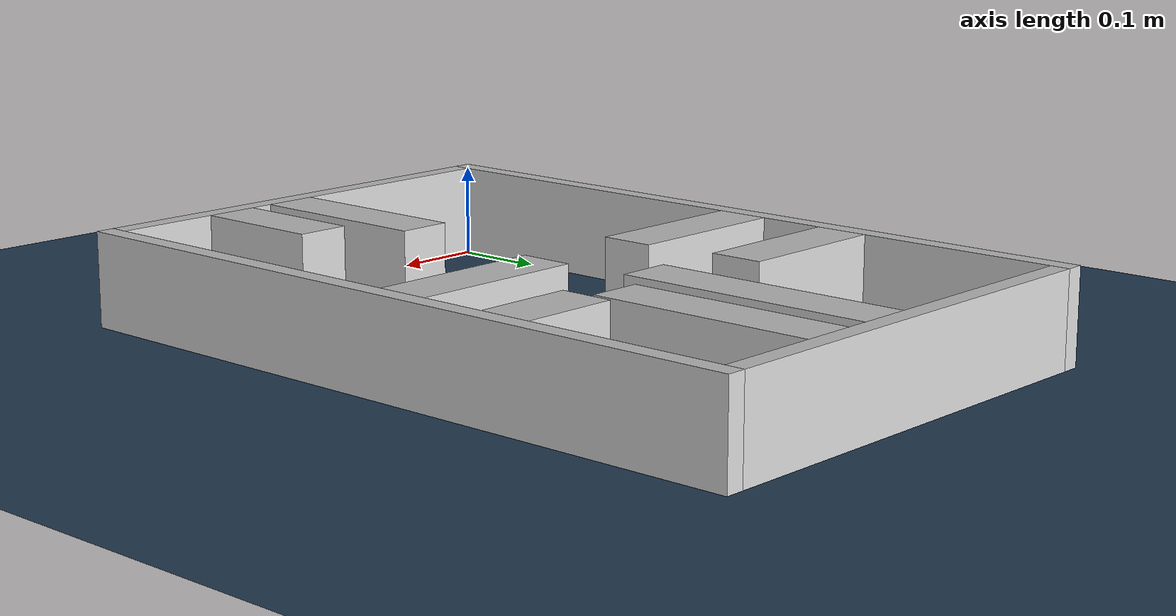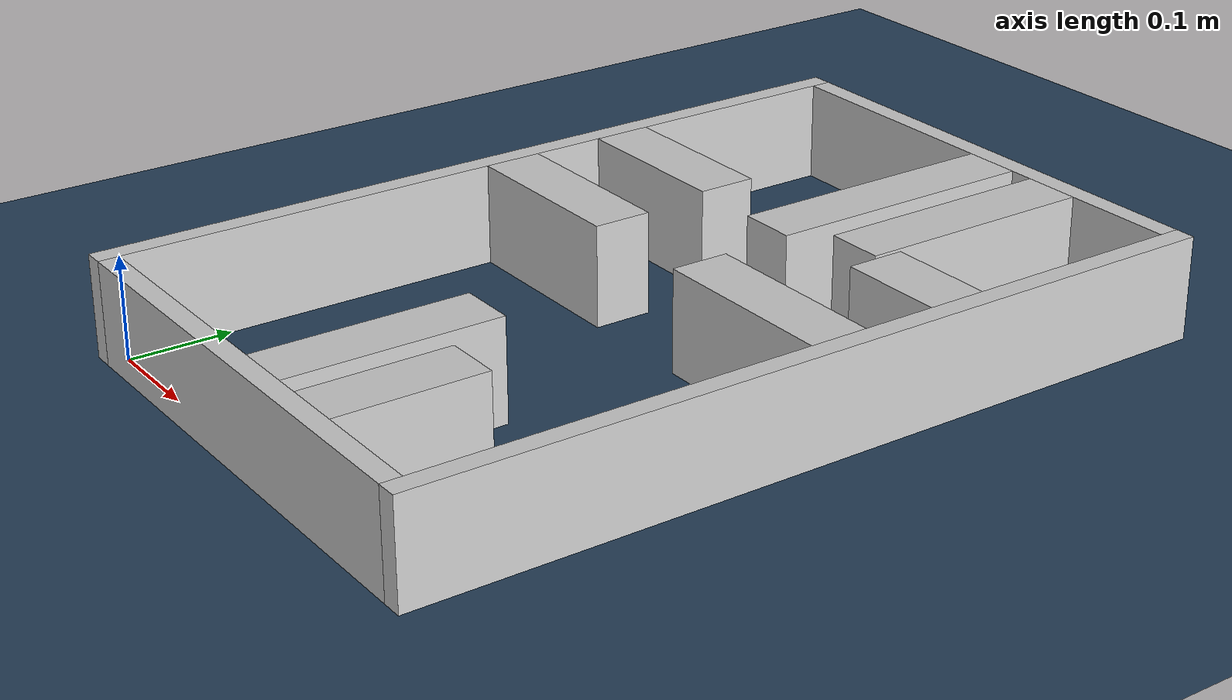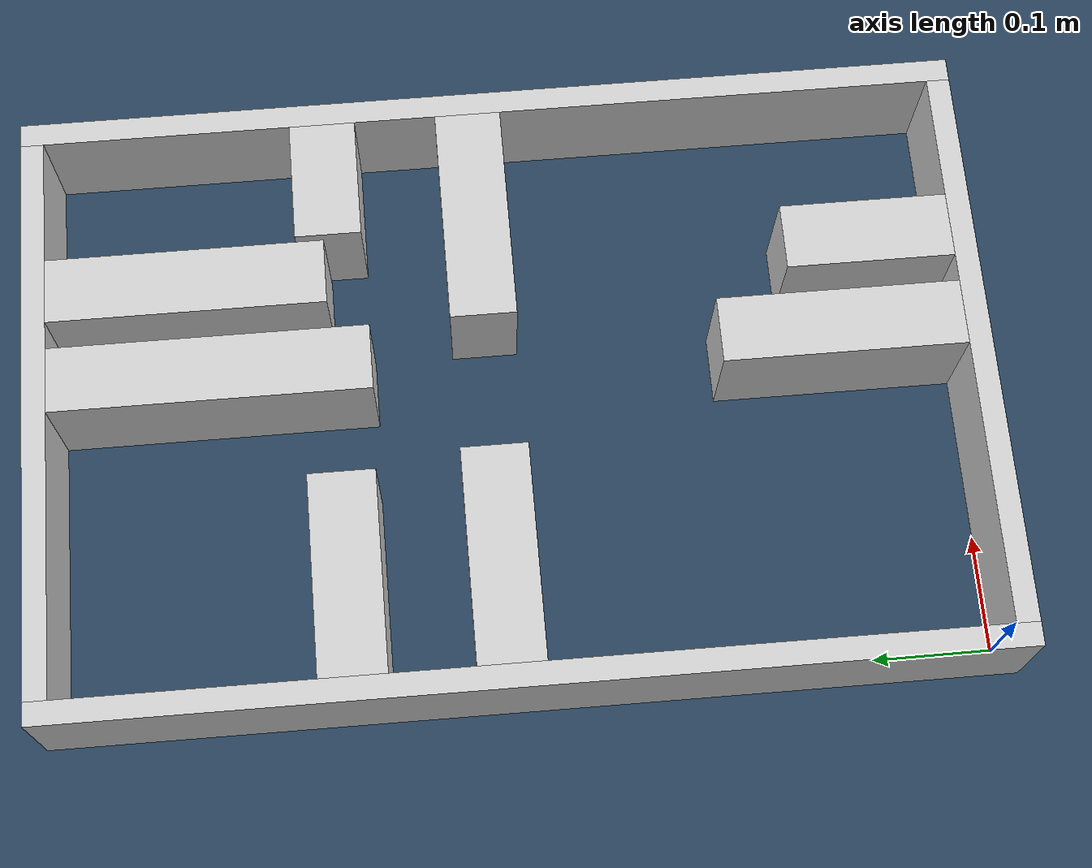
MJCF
<?xml version="1.0" ?>
<mujoco model="generated_real_template">
  <compiler angle="degree"/>
  <option timestep="0.002" integrator="implicitfast" iterations="100" cone="elliptic"/>
  <default>
    <geom density="1"/>
  </default>
  <asset>
    <texture builtin="gradient" height="3072" rgb1="0.3 0.5 0.7" rgb2="0 0 0" type="skybox" width="512"/>
    <texture builtin="checker" height="300" mark="edge" markrgb="0.8 0.8 0.8" name="groundplane" rgb1="0.2 0.3 0.4" rgb2="0.1 0.2 0.3" type="2d" width="300"/>
    <material name="groundplane" reflectance="0.2" texrepeat="5 5" texture="groundplane" texuniform="true"/>
  </asset>
  <worldbody>
    <light dir="0 0 -1" directional="true" pos="0 0 1.5"/>
    <geom name="floor" type="plane" condim="4" friction="0.5 0.005 0.001" material="groundplane" size="0 0 0.05"/>
    <body name="walls">
      <geom name="wall_boundary_left" type="box" condim="4" friction="1.0 0.005 0.0001" rgba="0.8 0.8 0.8 1" pos="-0.010000 0.387500 0.050000" euler="0 0 0.000000" size="0.010000 0.407500 0.050000"/>
      <geom name="wall_boundary_right" type="box" condim="4" friction="1.0 0.005 0.0001" rgba="0.8 0.8 0.8 1" pos="0.500000 0.387500 0.050000" euler="0 0 0.000000" size="0.010000 0.407500 0.050000"/>
      <geom name="wall_boundary_bottom" type="box" condim="4" friction="1.0 0.005 0.0001" rgba="0.8 0.8 0.8 1" pos="0.245000 -0.010000 0.050000" euler="0 0 0.000000" size="0.245000 0.010000 0.050000"/>
      <geom name="wall_boundary_top" type="box" condim="4" friction="1.0 0.005 0.0001" rgba="0.8 0.8 0.8 1" pos="0.245000 0.785000 0.050000" euler="0 0 0.000000" size="0.245000 0.010000 0.050000"/>
      <geom name="wall_inner_1_1" type="box" condim="4" friction="1.0 0.005 0.0001" rgba="0.8 0.8 0.8 1" pos="0.270906 0.103953 0.050000" euler="0 0 90.000000" size="0.103953 0.028500 0.050000"/>
      <geom name="wall_inner_1_2" type="box" condim="4" friction="1.0 0.005 0.0001" rgba="0.8 0.8 0.8 1" pos="0.270906 0.638584 0.050000" euler="0 0 90.000000" size="0.136416 0.028500 0.050000"/>
      <geom name="wall_inner_2_1" type="box" condim="4" friction="1.0 0.005 0.0001" rgba="0.8 0.8 0.8 1" pos="0.351645 0.071998 0.050000" euler="0 0 90.000000" size="0.071998 0.028500 0.050000"/>
      <geom name="wall_inner_2_2" type="box" condim="4" friction="1.0 0.005 0.0001" rgba="0.8 0.8 0.8 1" pos="0.351645 0.655910 0.050000" euler="0 0 90.000000" size="0.119090 0.028500 0.050000"/>
      <geom name="wall_inner_3_1" type="box" condim="4" friction="1.0 0.005 0.0001" rgba="0.8 0.8 0.8 1" pos="0.085737 0.532794 0.050000" euler="0 0 0.000000" size="0.085737 0.028500 0.050000"/>
      <geom name="wall_inner_3_2" type="box" condim="4" friction="1.0 0.005 0.0001" rgba="0.8 0.8 0.8 1" pos="0.437489 0.532794 0.050000" euler="0 0 0.000000" size="0.052511 0.028500 0.050000"/>
      <geom name="wall_inner_4_1" type="box" condim="4" friction="1.0 0.005 0.0001" rgba="0.8 0.8 0.8 1" pos="0.092084 0.405381 0.050000" euler="0 0 0.000000" size="0.092084 0.028500 0.050000"/>
      <geom name="wall_inner_4_2" type="box" condim="4" friction="1.0 0.005 0.0001" rgba="0.8 0.8 0.8 1" pos="0.395289 0.405381 0.050000" euler="0 0 0.000000" size="0.094711 0.028500 0.050000"/>
    </body>
  </worldbody>
</mujoco>
